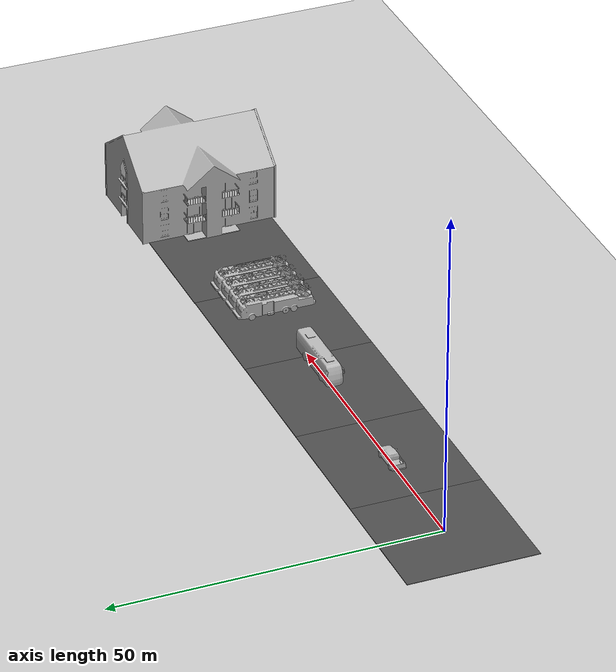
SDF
<sdf version="1.6">
 <world name="default">
  <light name="sun" type="directional">
   <pose>0 0 10 0 -0 0</pose>
   <diffuse>0.8 0.8 0.8 1</diffuse>
   <specular>0.2 0.2 0.2 1</specular>
   <attenuation>
    <range>1000</range>
    <constant>0.9</constant>
    <linear>0.01</linear>
    <quadratic>0.001</quadratic>
   </attenuation>
   <direction>-0.5 0.1 -0.9</direction>
  </light>
  <model name="ground_plane">
   <static>1</static>
   <link name="link">
    <collision name="collision">
     <geometry><plane><normal>0 0 1</normal><size>100 100</size></plane></geometry>
     <surface><friction><ode><mu>100</mu><mu2>50</mu2></ode></friction></surface>
    </collision>
    <visual name="visual">
     <cast_shadows>0</cast_shadows>
     <geometry><plane><normal>0 0 1</normal><size>100 100</size></plane></geometry>
     <material>
      <script><uri>file://media/materials/scripts/gazebo.material</uri><name>Gazebo/Grey</name></script>
     </material>
    </visual>
   </link>
  </model>
  <gravity>0 0 -9.8</gravity>
  <magnetic_field>6e-06 2.3e-05 -4.2e-05</magnetic_field>
  <atmosphere type="adiabatic"/>
  <physics name="default_physics" default="0" type="ode">
   <max_step_size>0.001</max_step_size>
   <real_time_factor>1</real_time_factor>
   <real_time_update_rate>1000</real_time_update_rate>
  </physics>
  <scene><ambient>0.4 0.4 0.4 1</ambient><background>0.7 0.7 0.7 1</background><shadows>1</shadows></scene>
  <spherical_coordinates>
   <surface_model>EARTH_WGS84</surface_model>
   <latitude_deg>0</latitude_deg>
   <longitude_deg>0</longitude_deg>
   <elevation>0</elevation>
   <heading_deg>0</heading_deg>
  </spherical_coordinates>
  <model name="asphalt_plane">
   <static>1</static>
   <link name="link">
    <collision name="collision"><geometry><box><size>20 20 0.1</size></box></geometry></collision>
    <visual name="visual">
     <cast_shadows>0</cast_shadows>
     <geometry><box><size>20 20 0.1</size></box></geometry>
     <material>
      <script>
       <uri>model://asphalt_plane/materials/scripts</uri>
       <uri>model://asphalt_plane/materials/textures</uri>
       <name>vrc/asphalt</name>
      </script>
     </material>
    </visual>
   </link>
   <pose>-0.012748 6e-05 0 0 -0 0</pose>
  </model>
  <model name="asphalt_plane_0">
   <static>1</static>
   <link name="link">
    <collision name="collision"><geometry><box><size>20 20 0.1</size></box></geometry></collision>
    <visual name="visual">
     <cast_shadows>0</cast_shadows>
     <geometry><box><size>20 20 0.1</size></box></geometry>
     <material>
      <script>
       <uri>model://asphalt_plane/materials/scripts</uri>
       <uri>model://asphalt_plane/materials/textures</uri>
       <name>vrc/asphalt</name>
      </script>
     </material>
    </visual>
   </link>
   <pose>19.9505 -0.011472 0 0 -0 0</pose>
  </model>
  <model name="asphalt_plane_1">
   <static>1</static>
   <link name="link">
    <collision name="collision"><geometry><box><size>20 20 0.1</size></box></geometry></collision>
    <visual name="visual">
     <cast_shadows>0</cast_shadows>
     <geometry><box><size>20 20 0.1</size></box></geometry>
     <material>
      <script>
       <uri>model://asphalt_plane/materials/scripts</uri>
       <uri>model://asphalt_plane/materials/textures</uri>
       <name>vrc/asphalt</name>
      </script>
     </material>
    </visual>
   </link>
   <pose>39.9007 -0.019966 0 0 -0 0</pose>
  </model>
  <model name="asphalt_plane_2">
   <static>1</static>
   <link name="link">
    <collision name="collision"><geometry><box><size>20 20 0.1</size></box></geometry></collision>
    <visual name="visual">
     <cast_shadows>0</cast_shadows>
     <geometry><box><size>20 20 0.1</size></box></geometry>
     <material>
      <script>
       <uri>model://asphalt_plane/materials/scripts</uri>
       <uri>model://asphalt_plane/materials/textures</uri>
       <name>vrc/asphalt</name>
      </script>
     </material>
    </visual>
   </link>
   <pose>59.4177 0.001961 0 0 -0 0</pose>
  </model>
  <model name="asphalt_plane_3">
   <static>1</static>
   <link name="link">
    <collision name="collision"><geometry><box><size>20 20 0.1</size></box></geometry></collision>
    <visual name="visual">
     <cast_shadows>0</cast_shadows>
     <geometry><box><size>20 20 0.1</size></box></geometry>
     <material>
      <script>
       <uri>model://asphalt_plane/materials/scripts</uri>
       <uri>model://asphalt_plane/materials/textures</uri>
       <name>vrc/asphalt</name>
      </script>
     </material>
    </visual>
   </link>
   <pose>79.3732 0.05645 0 0 -0 0</pose>
  </model>
  <model name="pickup">
   <static>1</static>
   <link name="link">
    <collision name="collision">
     <pose>0 0 0 0 0 -1.5708</pose>
     <geometry><mesh><uri>model://pickup/meshes/pickup.dae</uri></mesh></geometry>
    </collision>
    <visual name="visual">
     <pose>0 0 0 0 0 -1.5708</pose>
     <geometry><mesh><uri>model://pickup/meshes/pickup.dae</uri></mesh></geometry>
    </visual>
   </link>
   <pose>18.8225 -0.011649 0 0 -0 0</pose>
  </model>
  <model name="fire_truck">
   <static>1</static>
   <link name="link">
    <collision name="collision">
     <geometry>
      <mesh><scale>0.1 0.1 0.1</scale><uri>model://fire_truck/meshes/fire_truck.obj</uri></mesh>
     </geometry>
    </collision>
    <visual name="visual">
     <geometry>
      <mesh><scale>0.1 0.1 0.1</scale><uri>model://fire_truck/meshes/fire_truck.obj</uri></mesh>
     </geometry>
    </visual>
   </link>
   <pose>63.1101 0.209785 0 0 -0 0</pose>
  </model>
  <model name="bus">
   <static>1</static>
   <link name="link">
    <collision name="collision">
     <geometry><mesh><scale>0.01 0.01 0.01</scale><uri>model://bus/meshes/bus.obj</uri></mesh></geometry>
    </collision>
    <visual name="visual">
     <geometry><mesh><scale>0.01 0.01 0.01</scale><uri>model://bus/meshes/bus.obj</uri></mesh></geometry>
    </visual>
   </link>
   <pose>45.7627 -0.214852 0 0 0 -1.56995</pose>
  </model>
  <model name="fire_truck_clone">
   <static>1</static>
   <link name="link">
    <collision name="collision">
     <geometry>
      <mesh><scale>0.1 0.1 0.1</scale><uri>model://fire_truck/meshes/fire_truck.obj</uri></mesh>
     </geometry>
    </collision>
    <visual name="visual">
     <geometry>
      <mesh><scale>0.1 0.1 0.1</scale><uri>model://fire_truck/meshes/fire_truck.obj</uri></mesh>
     </geometry>
    </visual>
   </link>
   <pose>66.0071 0.182454 0 0 -0 0</pose>
  </model>
  <model name="fire_truck_clone_0">
   <static>1</static>
   <link name="link">
    <collision name="collision">
     <geometry>
      <mesh><scale>0.1 0.1 0.1</scale><uri>model://fire_truck/meshes/fire_truck.obj</uri></mesh>
     </geometry>
    </collision>
    <visual name="visual">
     <geometry>
      <mesh><scale>0.1 0.1 0.1</scale><uri>model://fire_truck/meshes/fire_truck.obj</uri></mesh>
     </geometry>
    </visual>
   </link>
   <pose>68.9058 0.205168 0 0 -0 0</pose>
  </model>
  <model name="fire_truck_clone_1">
   <static>1</static>
   <link name="link">
    <collision name="collision">
     <geometry>
      <mesh><scale>0.1 0.1 0.1</scale><uri>model://fire_truck/meshes/fire_truck.obj</uri></mesh>
     </geometry>
    </collision>
    <visual name="visual">
     <geometry>
      <mesh><scale>0.1 0.1 0.1</scale><uri>model://fire_truck/meshes/fire_truck.obj</uri></mesh>
     </geometry>
    </visual>
   </link>
   <pose>71.8351 0.23373 0 0 -0 0</pose>
  </model>
  <model name="apartment">
   <static>1</static>
   <link name="link">
    <collision name="collision">
     <geometry><mesh><uri>model://apartment/meshes/apartment.dae</uri></mesh></geometry>
    </collision>
    <visual name="visual">
     <geometry><mesh><uri>model://apartment/meshes/apartment.dae</uri></mesh></geometry>
    </visual>
   </link>
   <pose>96.2987 0.247223 0 0 -0 0</pose>
  </model>
 </world>
</sdf>
